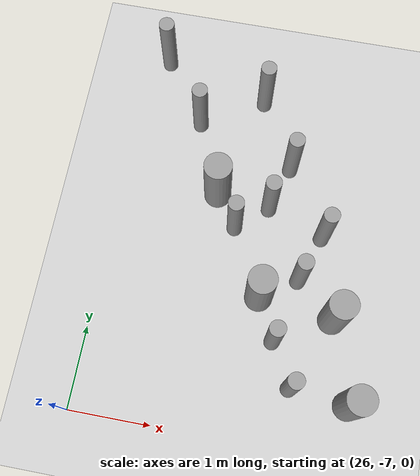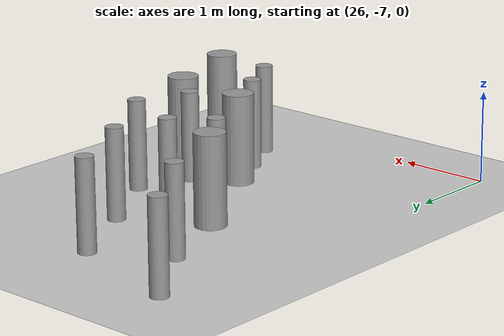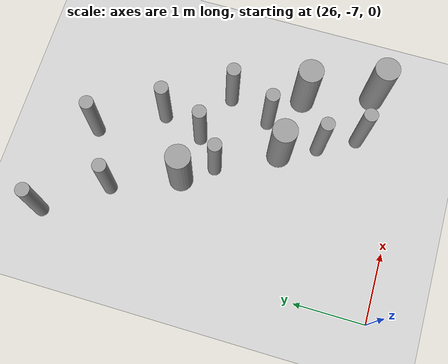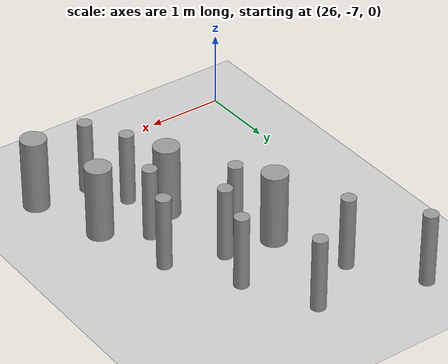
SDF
<sdf version="1.6">
 <world name="default">
  <model name="ground_plane">
   <static>1</static>
   <link name="link">
    <collision name="collision">
     <geometry><plane><normal>0 0 1</normal><size>100 100</size></plane></geometry>
     <surface><friction><ode><mu>100</mu><mu2>50</mu2></ode></friction></surface>
    </collision>
    <visual name="visual">
     <cast_shadows>0</cast_shadows>
     <geometry><plane><normal>0 0 1</normal><size>100 100</size></plane></geometry>
     <material>
      <script><uri>file://media/materials/scripts/gazebo.material</uri><name>Gazebo/Grey</name></script>
     </material>
    </visual>
   </link>
  </model>
  <model name="cyl_wall_clone_clone_1_clone_1_clone_clone">
   <link name="link_0">
    <pose>-2.73893 -0.366465 0 0 -0 0</pose>
    <inertial>
     <mass>0.0374993</mass>
     <inertia>
      <ixx>0.00321281</ixx>
      <ixy>0</ixy>
      <ixz>0</ixz>
      <iyy>0.00321281</iyy>
      <iyz>0</iyz>
      <izz>0.000175774</izz>
     </inertia>
    </inertial>
    <visual name="visual">
     <geometry><cylinder><radius>0.0968661</radius><length>1</length></cylinder></geometry>
     <material>
      <lighting>1</lighting>
      <script><uri>file://media/materials/scripts/gazebo.material</uri><name>Gazebo/Grey</name></script>
      <ambient>0.3 0.3 0.3 1</ambient>
      <diffuse>0.7 0.7 0.7 1</diffuse>
      <specular>0.01 0.01 0.01 1</specular>
      <emissive>0 0 0 1</emissive>
     </material>
    </visual>
    <collision name="collision">
     <geometry><cylinder><radius>0.096866</radius><length>1</length></cylinder></geometry>
     <surface>
      <friction>
       <ode><mu>1</mu><mu2>1</mu2><fdir1>0 0 0</fdir1><slip1>0</slip1><slip2>0</slip2></ode>
       <torsional>
        <coefficient>1</coefficient>
        <patch_radius>0</patch_radius>
        <surface_radius>0</surface_radius>
        <use_patch_radius>1</use_patch_radius>
        <ode><slip>0</slip></ode>
       </torsional>
      </friction>
      <bounce><restitution_coefficient>0</restitution_coefficient><threshold>1e+06</threshold></bounce>
      <contact>
       <collide_without_contact>0</collide_without_contact>
       <collide_without_contact_bitmask>1</collide_without_contact_bitmask>
       <collide_bitmask>1</collide_bitmask>
       <ode>
        <soft_cfm>0</soft_cfm>
        <soft_erp>0.2</soft_erp>
        <kp>1e+13</kp>
        <kd>1</kd>
        <max_vel>0.01</max_vel>
        <min_depth>0</min_depth>
       </ode>
       <bullet>
        <split_impulse>1</split_impulse>
        <split_impulse_penetration_threshold>-0.01</split_impulse_penetration_threshold>
        <soft_cfm>0</soft_cfm>
        <soft_erp>0.2</soft_erp>
        <kp>1e+13</kp>
        <kd>1</kd>
       </bullet>
      </contact>
     </surface>
    </collision>
   </link>
   <link name="link_0_clone">
    <pose>-1.73893 0.61877 0 0 -0 0</pose>
    <inertial>
     <mass>0.0374993</mass>
     <inertia>
      <ixx>0.00321281</ixx>
      <ixy>0</ixy>
      <ixz>0</ixz>
      <iyy>0.00321281</iyy>
      <iyz>0</iyz>
      <izz>0.000175774</izz>
     </inertia>
    </inertial>
    <visual name="visual">
     <geometry><cylinder><radius>0.0968661</radius><length>1</length></cylinder></geometry>
     <material>
      <lighting>1</lighting>
      <script><uri>file://media/materials/scripts/gazebo.material</uri><name>Gazebo/Grey</name></script>
      <ambient>0.3 0.3 0.3 1</ambient>
      <diffuse>0.7 0.7 0.7 1</diffuse>
      <specular>0.01 0.01 0.01 1</specular>
      <emissive>0 0 0 1</emissive>
      <shader type="pixel"/>
     </material>
    </visual>
    <collision name="collision">
     <geometry><cylinder><radius>0.096866</radius><length>1</length></cylinder></geometry>
     <surface>
      <friction>
       <ode><mu>1</mu><mu2>1</mu2><fdir1>0 0 0</fdir1><slip1>0</slip1><slip2>0</slip2></ode>
       <torsional>
        <coefficient>1</coefficient>
        <patch_radius>0</patch_radius>
        <surface_radius>0</surface_radius>
        <use_patch_radius>1</use_patch_radius>
        <ode><slip>0</slip></ode>
       </torsional>
      </friction>
      <bounce><restitution_coefficient>0</restitution_coefficient><threshold>1e+06</threshold></bounce>
      <contact>
       <collide_without_contact>0</collide_without_contact>
       <collide_without_contact_bitmask>1</collide_without_contact_bitmask>
       <collide_bitmask>1</collide_bitmask>
       <ode>
        <soft_cfm>0</soft_cfm>
        <soft_erp>0.2</soft_erp>
        <kp>1e+13</kp>
        <kd>1</kd>
        <max_vel>0.01</max_vel>
        <min_depth>0</min_depth>
       </ode>
       <bullet>
        <split_impulse>1</split_impulse>
        <split_impulse_penetration_threshold>-0.01</split_impulse_penetration_threshold>
        <soft_cfm>0</soft_cfm>
        <soft_erp>0.2</soft_erp>
        <kp>1e+13</kp>
        <kd>1</kd>
       </bullet>
      </contact>
     </surface>
    </collision>
   </link>
   <link name="link_0_clone_clone">
    <pose>-0.327073 0.143919 0 0 -0 0</pose>
    <inertial>
     <mass>0.0374993</mass>
     <inertia>
      <ixx>0.00321281</ixx>
      <ixy>0</ixy>
      <ixz>0</ixz>
      <iyy>0.00321281</iyy>
      <iyz>0</iyz>
      <izz>0.000175774</izz>
     </inertia>
    </inertial>
    <visual name="visual">
     <geometry><cylinder><radius>0.0968661</radius><length>1</length></cylinder></geometry>
     <material>
      <lighting>1</lighting>
      <script><uri>file://media/materials/scripts/gazebo.material</uri><name>Gazebo/Grey</name></script>
      <ambient>0.3 0.3 0.3 1</ambient>
      <diffuse>0.7 0.7 0.7 1</diffuse>
      <specular>0.01 0.01 0.01 1</specular>
      <emissive>0 0 0 1</emissive>
      <shader type="pixel"/>
     </material>
    </visual>
    <collision name="collision">
     <geometry><cylinder><radius>0.096866</radius><length>1</length></cylinder></geometry>
     <surface>
      <friction>
       <ode><mu>1</mu><mu2>1</mu2><fdir1>0 0 0</fdir1><slip1>0</slip1><slip2>0</slip2></ode>
       <torsional>
        <coefficient>1</coefficient>
        <patch_radius>0</patch_radius>
        <surface_radius>0</surface_radius>
        <use_patch_radius>1</use_patch_radius>
        <ode><slip>0</slip></ode>
       </torsional>
      </friction>
      <bounce><restitution_coefficient>0</restitution_coefficient><threshold>1e+06</threshold></bounce>
      <contact>
       <collide_without_contact>0</collide_without_contact>
       <collide_without_contact_bitmask>1</collide_without_contact_bitmask>
       <collide_bitmask>1</collide_bitmask>
       <ode>
        <soft_cfm>0</soft_cfm>
        <soft_erp>0.2</soft_erp>
        <kp>1e+13</kp>
        <kd>1</kd>
        <max_vel>0.01</max_vel>
        <min_depth>0</min_depth>
       </ode>
       <bullet>
        <split_impulse>1</split_impulse>
        <split_impulse_penetration_threshold>-0.01</split_impulse_penetration_threshold>
        <soft_cfm>0</soft_cfm>
        <soft_erp>0.2</soft_erp>
        <kp>1e+13</kp>
        <kd>1</kd>
       </bullet>
      </contact>
     </surface>
    </collision>
   </link>
   <link name="link_0_clone_clone_0">
    <pose>1.26107 -0.419359 0 0 -0 0</pose>
    <inertial>
     <mass>0.0374993</mass>
     <inertia>
      <ixx>0.00321281</ixx>
      <ixy>0</ixy>
      <ixz>0</ixz>
      <iyy>0.00321281</iyy>
      <iyz>0</iyz>
      <izz>0.000175774</izz>
     </inertia>
    </inertial>
    <visual name="visual">
     <geometry><cylinder><radius>0.0968661</radius><length>1</length></cylinder></geometry>
     <material>
      <lighting>1</lighting>
      <script><uri>file://media/materials/scripts/gazebo.material</uri><name>Gazebo/Grey</name></script>
      <ambient>0.3 0.3 0.3 1</ambient>
      <diffuse>0.7 0.7 0.7 1</diffuse>
      <specular>0.01 0.01 0.01 1</specular>
      <emissive>0 0 0 1</emissive>
      <shader type="pixel"/>
     </material>
    </visual>
    <collision name="collision">
     <geometry><cylinder><radius>0.096866</radius><length>1</length></cylinder></geometry>
     <surface>
      <friction>
       <ode><mu>1</mu><mu2>1</mu2><fdir1>0 0 0</fdir1><slip1>0</slip1><slip2>0</slip2></ode>
       <torsional>
        <coefficient>1</coefficient>
        <patch_radius>0</patch_radius>
        <surface_radius>0</surface_radius>
        <use_patch_radius>1</use_patch_radius>
        <ode><slip>0</slip></ode>
       </torsional>
      </friction>
      <bounce><restitution_coefficient>0</restitution_coefficient><threshold>1e+06</threshold></bounce>
      <contact>
       <collide_without_contact>0</collide_without_contact>
       <collide_without_contact_bitmask>1</collide_without_contact_bitmask>
       <collide_bitmask>1</collide_bitmask>
       <ode>
        <soft_cfm>0</soft_cfm>
        <soft_erp>0.2</soft_erp>
        <kp>1e+13</kp>
        <kd>1</kd>
        <max_vel>0.01</max_vel>
        <min_depth>0</min_depth>
       </ode>
       <bullet>
        <split_impulse>1</split_impulse>
        <split_impulse_penetration_threshold>-0.01</split_impulse_penetration_threshold>
        <soft_cfm>0</soft_cfm>
        <soft_erp>0.2</soft_erp>
        <kp>1e+13</kp>
        <kd>1</kd>
       </bullet>
      </contact>
     </surface>
    </collision>
   </link>
   <link name="link_0_clone_clone_1">
    <pose>-1.73893 -0.277168 0 0 -0 0</pose>
    <inertial>
     <mass>0.0374993</mass>
     <inertia>
      <ixx>0.00321281</ixx>
      <ixy>0</ixy>
      <ixz>0</ixz>
      <iyy>0.00321281</iyy>
      <iyz>0</iyz>
      <izz>0.000175774</izz>
     </inertia>
    </inertial>
    <visual name="visual">
     <geometry><cylinder><radius>0.0968661</radius><length>1</length></cylinder></geometry>
     <material>
      <lighting>1</lighting>
      <script><uri>file://media/materials/scripts/gazebo.material</uri><name>Gazebo/Grey</name></script>
      <ambient>0.3 0.3 0.3 1</ambient>
      <diffuse>0.7 0.7 0.7 1</diffuse>
      <specular>0.01 0.01 0.01 1</specular>
      <emissive>0 0 0 1</emissive>
      <shader type="pixel"/>
     </material>
    </visual>
    <collision name="collision">
     <geometry><cylinder><radius>0.096866</radius><length>1</length></cylinder></geometry>
     <surface>
      <friction>
       <ode><mu>1</mu><mu2>1</mu2><fdir1>0 0 0</fdir1><slip1>0</slip1><slip2>0</slip2></ode>
       <torsional>
        <coefficient>1</coefficient>
        <patch_radius>0</patch_radius>
        <surface_radius>0</surface_radius>
        <use_patch_radius>1</use_patch_radius>
        <ode><slip>0</slip></ode>
       </torsional>
      </friction>
      <bounce><restitution_coefficient>0</restitution_coefficient><threshold>1e+06</threshold></bounce>
      <contact>
       <collide_without_contact>0</collide_without_contact>
       <collide_without_contact_bitmask>1</collide_without_contact_bitmask>
       <collide_bitmask>1</collide_bitmask>
       <ode>
        <soft_cfm>0</soft_cfm>
        <soft_erp>0.2</soft_erp>
        <kp>1e+13</kp>
        <kd>1</kd>
        <max_vel>0.01</max_vel>
        <min_depth>0</min_depth>
       </ode>
       <bullet>
        <split_impulse>1</split_impulse>
        <split_impulse_penetration_threshold>-0.01</split_impulse_penetration_threshold>
        <soft_cfm>0</soft_cfm>
        <soft_erp>0.2</soft_erp>
        <kp>1e+13</kp>
        <kd>1</kd>
       </bullet>
      </contact>
     </surface>
    </collision>
   </link>
   <link name="link_0_clone_clone_2">
    <pose>-0.738934 0.593961 0 0 -0 0</pose>
    <inertial>
     <mass>0.0374993</mass>
     <inertia>
      <ixx>0.00321281</ixx>
      <ixy>0</ixy>
      <ixz>0</ixz>
      <iyy>0.00321281</iyy>
      <iyz>0</iyz>
      <izz>0.000175774</izz>
     </inertia>
    </inertial>
    <visual name="visual">
     <geometry><cylinder><radius>0.0968661</radius><length>1</length></cylinder></geometry>
     <material>
      <lighting>1</lighting>
      <script><uri>file://media/materials/scripts/gazebo.material</uri><name>Gazebo/Grey</name></script>
      <ambient>0.3 0.3 0.3 1</ambient>
      <diffuse>0.7 0.7 0.7 1</diffuse>
      <specular>0.01 0.01 0.01 1</specular>
      <emissive>0 0 0 1</emissive>
      <shader type="pixel"/>
     </material>
    </visual>
    <collision name="collision">
     <geometry><cylinder><radius>0.096866</radius><length>1</length></cylinder></geometry>
     <surface>
      <friction>
       <ode><mu>1</mu><mu2>1</mu2><fdir1>0 0 0</fdir1><slip1>0</slip1><slip2>0</slip2></ode>
       <torsional>
        <coefficient>1</coefficient>
        <patch_radius>0</patch_radius>
        <surface_radius>0</surface_radius>
        <use_patch_radius>1</use_patch_radius>
        <ode><slip>0</slip></ode>
       </torsional>
      </friction>
      <bounce><restitution_coefficient>0</restitution_coefficient><threshold>1e+06</threshold></bounce>
      <contact>
       <collide_without_contact>0</collide_without_contact>
       <collide_without_contact_bitmask>1</collide_without_contact_bitmask>
       <collide_bitmask>1</collide_bitmask>
       <ode>
        <soft_cfm>0</soft_cfm>
        <soft_erp>0.2</soft_erp>
        <kp>1e+13</kp>
        <kd>1</kd>
        <max_vel>0.01</max_vel>
        <min_depth>0</min_depth>
       </ode>
       <bullet>
        <split_impulse>1</split_impulse>
        <split_impulse_penetration_threshold>-0.01</split_impulse_penetration_threshold>
        <soft_cfm>0</soft_cfm>
        <soft_erp>0.2</soft_erp>
        <kp>1e+13</kp>
        <kd>1</kd>
       </bullet>
      </contact>
     </surface>
    </collision>
   </link>
   <link name="link_0_clone_clone_3">
    <pose>0.261066 0.624849 0 0 -0 0</pose>
    <inertial>
     <mass>0.0374993</mass>
     <inertia>
      <ixx>0.00321281</ixx>
      <ixy>0</ixy>
      <ixz>0</ixz>
      <iyy>0.00321281</iyy>
      <iyz>0</iyz>
      <izz>0.000175774</izz>
     </inertia>
    </inertial>
    <visual name="visual">
     <geometry><cylinder><radius>0.0968661</radius><length>1</length></cylinder></geometry>
     <material>
      <lighting>1</lighting>
      <script><uri>file://media/materials/scripts/gazebo.material</uri><name>Gazebo/Grey</name></script>
      <ambient>0.3 0.3 0.3 1</ambient>
      <diffuse>0.7 0.7 0.7 1</diffuse>
      <specular>0.01 0.01 0.01 1</specular>
      <emissive>0 0 0 1</emissive>
      <shader type="pixel"/>
     </material>
    </visual>
    <collision name="collision">
     <geometry><cylinder><radius>0.096866</radius><length>1</length></cylinder></geometry>
     <surface>
      <friction>
       <ode><mu>1</mu><mu2>1</mu2><fdir1>0 0 0</fdir1><slip1>0</slip1><slip2>0</slip2></ode>
       <torsional>
        <coefficient>1</coefficient>
        <patch_radius>0</patch_radius>
        <surface_radius>0</surface_radius>
        <use_patch_radius>1</use_patch_radius>
        <ode><slip>0</slip></ode>
       </torsional>
      </friction>
      <bounce><restitution_coefficient>0</restitution_coefficient><threshold>1e+06</threshold></bounce>
      <contact>
       <collide_without_contact>0</collide_without_contact>
       <collide_without_contact_bitmask>1</collide_without_contact_bitmask>
       <collide_bitmask>1</collide_bitmask>
       <ode>
        <soft_cfm>0</soft_cfm>
        <soft_erp>0.2</soft_erp>
        <kp>1e+13</kp>
        <kd>1</kd>
        <max_vel>0.01</max_vel>
        <min_depth>0</min_depth>
       </ode>
       <bullet>
        <split_impulse>1</split_impulse>
        <split_impulse_penetration_threshold>-0.01</split_impulse_penetration_threshold>
        <soft_cfm>0</soft_cfm>
        <soft_erp>0.2</soft_erp>
        <kp>1e+13</kp>
        <kd>1</kd>
       </bullet>
      </contact>
     </surface>
    </collision>
   </link>
   <link name="link_0_clone_clone_4">
    <pose>-0.239049 -0.353105 0 0 -0 0</pose>
    <inertial>
     <mass>0.0374993</mass>
     <inertia>
      <ixx>0.00321281</ixx>
      <ixy>0</ixy>
      <ixz>0</ixz>
      <iyy>0.00321281</iyy>
      <iyz>0</iyz>
      <izz>0.000175774</izz>
     </inertia>
    </inertial>
    <visual name="visual">
     <geometry><cylinder><radius>0.0968661</radius><length>1</length></cylinder></geometry>
     <material>
      <lighting>1</lighting>
      <script><uri>file://media/materials/scripts/gazebo.material</uri><name>Gazebo/Grey</name></script>
      <ambient>0.3 0.3 0.3 1</ambient>
      <diffuse>0.7 0.7 0.7 1</diffuse>
      <specular>0.01 0.01 0.01 1</specular>
      <emissive>0 0 0 1</emissive>
      <shader type="pixel"/>
     </material>
    </visual>
    <collision name="collision">
     <geometry><cylinder><radius>0.096866</radius><length>1</length></cylinder></geometry>
     <surface>
      <friction>
       <ode><mu>1</mu><mu2>1</mu2><fdir1>0 0 0</fdir1><slip1>0</slip1><slip2>0</slip2></ode>
       <torsional>
        <coefficient>1</coefficient>
        <patch_radius>0</patch_radius>
        <surface_radius>0</surface_radius>
        <use_patch_radius>1</use_patch_radius>
        <ode><slip>0</slip></ode>
       </torsional>
      </friction>
      <bounce><restitution_coefficient>0</restitution_coefficient><threshold>1e+06</threshold></bounce>
      <contact>
       <collide_without_contact>0</collide_without_contact>
       <collide_without_contact_bitmask>1</collide_without_contact_bitmask>
       <collide_bitmask>1</collide_bitmask>
       <ode>
        <soft_cfm>0</soft_cfm>
        <soft_erp>0.2</soft_erp>
        <kp>1e+13</kp>
        <kd>1</kd>
        <max_vel>0.01</max_vel>
        <min_depth>0</min_depth>
       </ode>
       <bullet>
        <split_impulse>1</split_impulse>
        <split_impulse_penetration_threshold>-0.01</split_impulse_penetration_threshold>
        <soft_cfm>0</soft_cfm>
        <soft_erp>0.2</soft_erp>
        <kp>1e+13</kp>
        <kd>1</kd>
       </bullet>
      </contact>
     </surface>
    </collision>
   </link>
   <link name="link_0_clone_clone_5">
    <pose>0.672792 0.143919 0 0 -0 0</pose>
    <inertial>
     <mass>0.0374993</mass>
     <inertia>
      <ixx>0.00321281</ixx>
      <ixy>0</ixy>
      <ixz>0</ixz>
      <iyy>0.00321281</iyy>
      <iyz>0</iyz>
      <izz>0.000175774</izz>
     </inertia>
    </inertial>
    <visual name="visual">
     <geometry><cylinder><radius>0.0968661</radius><length>1</length></cylinder></geometry>
     <material>
      <lighting>1</lighting>
      <script><uri>file://media/materials/scripts/gazebo.material</uri><name>Gazebo/Grey</name></script>
      <ambient>0.3 0.3 0.3 1</ambient>
      <diffuse>0.7 0.7 0.7 1</diffuse>
      <specular>0.01 0.01 0.01 1</specular>
      <emissive>0 0 0 1</emissive>
      <shader type="pixel"/>
     </material>
    </visual>
    <collision name="collision">
     <geometry><cylinder><radius>0.096866</radius><length>1</length></cylinder></geometry>
     <surface>
      <friction>
       <ode><mu>1</mu><mu2>1</mu2><fdir1>0 0 0</fdir1><slip1>0</slip1><slip2>0</slip2></ode>
       <torsional>
        <coefficient>1</coefficient>
        <patch_radius>0</patch_radius>
        <surface_radius>0</surface_radius>
        <use_patch_radius>1</use_patch_radius>
        <ode><slip>0</slip></ode>
       </torsional>
      </friction>
      <bounce><restitution_coefficient>0</restitution_coefficient><threshold>1e+06</threshold></bounce>
      <contact>
       <collide_without_contact>0</collide_without_contact>
       <collide_without_contact_bitmask>1</collide_without_contact_bitmask>
       <collide_bitmask>1</collide_bitmask>
       <ode>
        <soft_cfm>0</soft_cfm>
        <soft_erp>0.2</soft_erp>
        <kp>1e+13</kp>
        <kd>1</kd>
        <max_vel>0.01</max_vel>
        <min_depth>0</min_depth>
       </ode>
       <bullet>
        <split_impulse>1</split_impulse>
        <split_impulse_penetration_threshold>-0.01</split_impulse_penetration_threshold>
        <soft_cfm>0</soft_cfm>
        <soft_erp>0.2</soft_erp>
        <kp>1e+13</kp>
        <kd>1</kd>
       </bullet>
      </contact>
     </surface>
    </collision>
   </link>
   <link name="link_0_clone_clone_6">
    <pose>1.84596 -0.433423 0 0 -0 0</pose>
    <inertial>
     <mass>0.0374993</mass>
     <inertia>
      <ixx>0.00321281</ixx>
      <ixy>0</ixy>
      <ixz>0</ixz>
      <iyy>0.00321281</iyy>
      <iyz>0</iyz>
      <izz>0.000175774</izz>
     </inertia>
    </inertial>
    <visual name="visual">
     <geometry><cylinder><radius>0.0968661</radius><length>1</length></cylinder></geometry>
     <material>
      <lighting>1</lighting>
      <script><uri>file://media/materials/scripts/gazebo.material</uri><name>Gazebo/Grey</name></script>
      <ambient>0.3 0.3 0.3 1</ambient>
      <diffuse>0.7 0.7 0.7 1</diffuse>
      <specular>0.01 0.01 0.01 1</specular>
      <emissive>0 0 0 1</emissive>
      <shader type="pixel"/>
     </material>
    </visual>
    <collision name="collision">
     <geometry><cylinder><radius>0.096866</radius><length>1</length></cylinder></geometry>
     <surface>
      <friction>
       <ode><mu>1</mu><mu2>1</mu2><fdir1>0 0 0</fdir1><slip1>0</slip1><slip2>0</slip2></ode>
       <torsional>
        <coefficient>1</coefficient>
        <patch_radius>0</patch_radius>
        <surface_radius>0</surface_radius>
        <use_patch_radius>1</use_patch_radius>
        <ode><slip>0</slip></ode>
       </torsional>
      </friction>
      <bounce><restitution_coefficient>0</restitution_coefficient><threshold>1e+06</threshold></bounce>
      <contact>
       <collide_without_contact>0</collide_without_contact>
       <collide_without_contact_bitmask>1</collide_without_contact_bitmask>
       <collide_bitmask>1</collide_bitmask>
       <ode>
        <soft_cfm>0</soft_cfm>
        <soft_erp>0.2</soft_erp>
        <kp>1e+13</kp>
        <kd>1</kd>
        <max_vel>0.01</max_vel>
        <min_depth>0</min_depth>
       </ode>
       <bullet>
        <split_impulse>1</split_impulse>
        <split_impulse_penetration_threshold>-0.01</split_impulse_penetration_threshold>
        <soft_cfm>0</soft_cfm>
        <soft_erp>0.2</soft_erp>
        <kp>1e+13</kp>
        <kd>1</kd>
       </bullet>
      </contact>
     </surface>
    </collision>
   </link>
   <link name="link_1">
    <pose>-0.738934 -0.397931 0 0 -0 0</pose>
    <inertial>
     <mass>0.117398</mass>
     <inertia>
      <ixx>0.0106445</ixx>
      <ixy>0</ixy>
      <ixz>0</ixz>
      <iyy>0.0106445</iyy>
      <iyz>0</iyz>
      <izz>0.00172278</izz>
     </inertia>
    </inertial>
    <visual name="visual">
     <geometry><cylinder><radius>0.171317</radius><length>1</length></cylinder></geometry>
     <material>
      <lighting>1</lighting>
      <script><uri>file://media/materials/scripts/gazebo.material</uri><name>Gazebo/Grey</name></script>
      <ambient>0.3 0.3 0.3 1</ambient>
      <diffuse>0.7 0.7 0.7 1</diffuse>
      <specular>0.01 0.01 0.01 1</specular>
      <emissive>0 0 0 1</emissive>
     </material>
    </visual>
    <collision name="collision">
     <geometry><cylinder><radius>0.171317</radius><length>1</length></cylinder></geometry>
     <surface>
      <friction>
       <ode><mu>1</mu><mu2>1</mu2><fdir1>0 0 0</fdir1><slip1>0</slip1><slip2>0</slip2></ode>
       <torsional>
        <coefficient>1</coefficient>
        <patch_radius>0</patch_radius>
        <surface_radius>0</surface_radius>
        <use_patch_radius>1</use_patch_radius>
        <ode><slip>0</slip></ode>
       </torsional>
      </friction>
      <bounce><restitution_coefficient>0</restitution_coefficient><threshold>1e+06</threshold></bounce>
      <contact>
       <collide_without_contact>0</collide_without_contact>
       <collide_without_contact_bitmask>1</collide_without_contact_bitmask>
       <collide_bitmask>1</collide_bitmask>
       <ode>
        <soft_cfm>0</soft_cfm>
        <soft_erp>0.2</soft_erp>
        <kp>1e+13</kp>
        <kd>1</kd>
        <max_vel>0.01</max_vel>
        <min_depth>0</min_depth>
       </ode>
       <bullet>
        <split_impulse>1</split_impulse>
        <split_impulse_penetration_threshold>-0.01</split_impulse_penetration_threshold>
        <soft_cfm>0</soft_cfm>
        <soft_erp>0.2</soft_erp>
        <kp>1e+13</kp>
        <kd>1</kd>
       </bullet>
      </contact>
     </surface>
    </collision>
   </link>
   <link name="link_1_clone">
    <pose>0.697784 -0.380861 0 0 -0 0</pose>
    <inertial>
     <mass>0.117398</mass>
     <inertia>
      <ixx>0.0106445</ixx>
      <ixy>0</ixy>
      <ixz>0</ixz>
      <iyy>0.0106445</iyy>
      <iyz>0</iyz>
      <izz>0.00172278</izz>
     </inertia>
    </inertial>
    <visual name="visual">
     <geometry><cylinder><radius>0.171317</radius><length>1</length></cylinder></geometry>
     <material>
      <lighting>1</lighting>
      <script><uri>file://media/materials/scripts/gazebo.material</uri><name>Gazebo/Grey</name></script>
      <ambient>0.3 0.3 0.3 1</ambient>
      <diffuse>0.7 0.7 0.7 1</diffuse>
      <specular>0.01 0.01 0.01 1</specular>
      <emissive>0 0 0 1</emissive>
      <shader type="pixel"/>
     </material>
    </visual>
    <collision name="collision">
     <geometry><cylinder><radius>0.171317</radius><length>1</length></cylinder></geometry>
     <surface>
      <friction>
       <ode><mu>1</mu><mu2>1</mu2><fdir1>0 0 0</fdir1><slip1>0</slip1><slip2>0</slip2></ode>
       <torsional>
        <coefficient>1</coefficient>
        <patch_radius>0</patch_radius>
        <surface_radius>0</surface_radius>
        <use_patch_radius>1</use_patch_radius>
        <ode><slip>0</slip></ode>
       </torsional>
      </friction>
      <bounce><restitution_coefficient>0</restitution_coefficient><threshold>1e+06</threshold></bounce>
      <contact>
       <collide_without_contact>0</collide_without_contact>
       <collide_without_contact_bitmask>1</collide_without_contact_bitmask>
       <collide_bitmask>1</collide_bitmask>
       <ode>
        <soft_cfm>0</soft_cfm>
        <soft_erp>0.2</soft_erp>
        <kp>1e+13</kp>
        <kd>1</kd>
        <max_vel>0.01</max_vel>
        <min_depth>0</min_depth>
       </ode>
       <bullet>
        <split_impulse>1</split_impulse>
        <split_impulse_penetration_threshold>-0.01</split_impulse_penetration_threshold>
        <soft_cfm>0</soft_cfm>
        <soft_erp>0.2</soft_erp>
        <kp>1e+13</kp>
        <kd>1</kd>
       </bullet>
      </contact>
     </surface>
    </collision>
   </link>
   <link name="link_1_clone_0">
    <pose>1.26107 0.358974 0 0 -0 0</pose>
    <inertial>
     <mass>0.117398</mass>
     <inertia>
      <ixx>0.0106445</ixx>
      <ixy>0</ixy>
      <ixz>0</ixz>
      <iyy>0.0106445</iyy>
      <iyz>0</iyz>
      <izz>0.00172278</izz>
     </inertia>
    </inertial>
    <visual name="visual">
     <geometry><cylinder><radius>0.171317</radius><length>1</length></cylinder></geometry>
     <material>
      <lighting>1</lighting>
      <script><uri>file://media/materials/scripts/gazebo.material</uri><name>Gazebo/Grey</name></script>
      <ambient>0.3 0.3 0.3 1</ambient>
      <diffuse>0.7 0.7 0.7 1</diffuse>
      <specular>0.01 0.01 0.01 1</specular>
      <emissive>0 0 0 1</emissive>
      <shader type="pixel"/>
     </material>
    </visual>
    <collision name="collision">
     <geometry><cylinder><radius>0.171317</radius><length>1</length></cylinder></geometry>
     <surface>
      <friction>
       <ode><mu>1</mu><mu2>1</mu2><fdir1>0 0 0</fdir1><slip1>0</slip1><slip2>0</slip2></ode>
       <torsional>
        <coefficient>1</coefficient>
        <patch_radius>0</patch_radius>
        <surface_radius>0</surface_radius>
        <use_patch_radius>1</use_patch_radius>
        <ode><slip>0</slip></ode>
       </torsional>
      </friction>
      <bounce><restitution_coefficient>0</restitution_coefficient><threshold>1e+06</threshold></bounce>
      <contact>
       <collide_without_contact>0</collide_without_contact>
       <collide_without_contact_bitmask>1</collide_without_contact_bitmask>
       <collide_bitmask>1</collide_bitmask>
       <ode>
        <soft_cfm>0</soft_cfm>
        <soft_erp>0.2</soft_erp>
        <kp>1e+13</kp>
        <kd>1</kd>
        <max_vel>0.01</max_vel>
        <min_depth>0</min_depth>
       </ode>
       <bullet>
        <split_impulse>1</split_impulse>
        <split_impulse_penetration_threshold>-0.01</split_impulse_penetration_threshold>
        <soft_cfm>0</soft_cfm>
        <soft_erp>0.2</soft_erp>
        <kp>1e+13</kp>
        <kd>1</kd>
       </bullet>
      </contact>
     </surface>
    </collision>
   </link>
   <link name="link_1_clone_1">
    <pose>2.26107 0.143919 0 0 -0 0</pose>
    <inertial>
     <mass>0.117398</mass>
     <inertia>
      <ixx>0.0106445</ixx>
      <ixy>0</ixy>
      <ixz>0</ixz>
      <iyy>0.0106445</iyy>
      <iyz>0</iyz>
      <izz>0.00172278</izz>
     </inertia>
    </inertial>
    <visual name="visual">
     <geometry><cylinder><radius>0.171317</radius><length>1</length></cylinder></geometry>
     <material>
      <lighting>1</lighting>
      <script><uri>file://media/materials/scripts/gazebo.material</uri><name>Gazebo/Grey</name></script>
      <ambient>0.3 0.3 0.3 1</ambient>
      <diffuse>0.7 0.7 0.7 1</diffuse>
      <specular>0.01 0.01 0.01 1</specular>
      <emissive>0 0 0 1</emissive>
      <shader type="pixel"/>
     </material>
    </visual>
    <collision name="collision">
     <geometry><cylinder><radius>0.171317</radius><length>1</length></cylinder></geometry>
     <surface>
      <friction>
       <ode><mu>1</mu><mu2>1</mu2><fdir1>0 0 0</fdir1><slip1>0</slip1><slip2>0</slip2></ode>
       <torsional>
        <coefficient>1</coefficient>
        <patch_radius>0</patch_radius>
        <surface_radius>0</surface_radius>
        <use_patch_radius>1</use_patch_radius>
        <ode><slip>0</slip></ode>
       </torsional>
      </friction>
      <bounce><restitution_coefficient>0</restitution_coefficient><threshold>1e+06</threshold></bounce>
      <contact>
       <collide_without_contact>0</collide_without_contact>
       <collide_without_contact_bitmask>1</collide_without_contact_bitmask>
       <collide_bitmask>1</collide_bitmask>
       <ode>
        <soft_cfm>0</soft_cfm>
        <soft_erp>0.2</soft_erp>
        <kp>1e+13</kp>
        <kd>1</kd>
        <max_vel>0.01</max_vel>
        <min_depth>0</min_depth>
       </ode>
       <bullet>
        <split_impulse>1</split_impulse>
        <split_impulse_penetration_threshold>-0.01</split_impulse_penetration_threshold>
        <soft_cfm>0</soft_cfm>
        <soft_erp>0.2</soft_erp>
        <kp>1e+13</kp>
        <kd>1</kd>
       </bullet>
      </contact>
     </surface>
    </collision>
   </link>
   <static>1</static>
   <pose>27.9674 -4.47626 0.5 0 0 -1.04703</pose>
  </model>
 </world>
</sdf>
